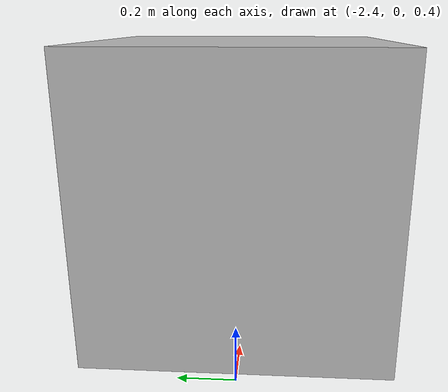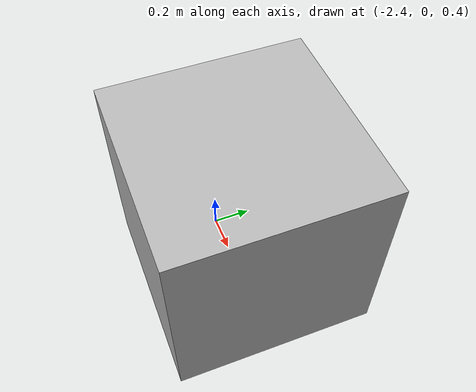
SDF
<?xml version="1.0" ?>
<sdf version="1.6">
    <world name="default">
        <include>
            <uri>model://sun</uri>
        </include>

        <model name="post">
            <pose>0 0 1 0 0 3.14159</pose>
            <static>true</static>
            <link name="link">
                <sensor name="logical_camera" type="logical_camera">
                    <logical_camera>
                        <near>0.55</near>
                        <far>2.5</far>
                        <horizontal_fov>1.05</horizontal_fov>
                        <aspect_ratio>1.8</aspect_ratio>
                    </logical_camera>

                    <visualize>true</visualize>
                    <always_on>true</always_on>
                    <update_rate>10</update_rate>
                </sensor>
            </link>
        </model>

        <model name="target_box">
            <static>true</static>
            <pose>-2 0 1 0 0 0</pose>
            <link name="link">
                <collision name="collision">
                    <geometry>
                        <box>
                            <size>1 1 1</size>
                        </box>
                    </geometry>
                </collision>
                <visual name="visual">
                    <geometry>
                        <box>
                            <size>1 1 1</size>
                        </box>
                    </geometry>
                </visual>
            </link>
        </model>
    </world>
</sdf>
